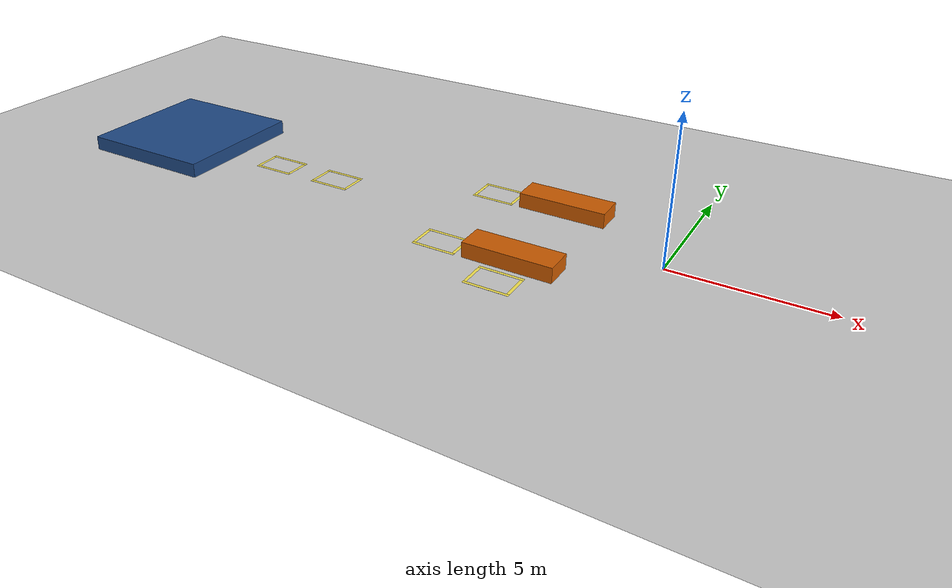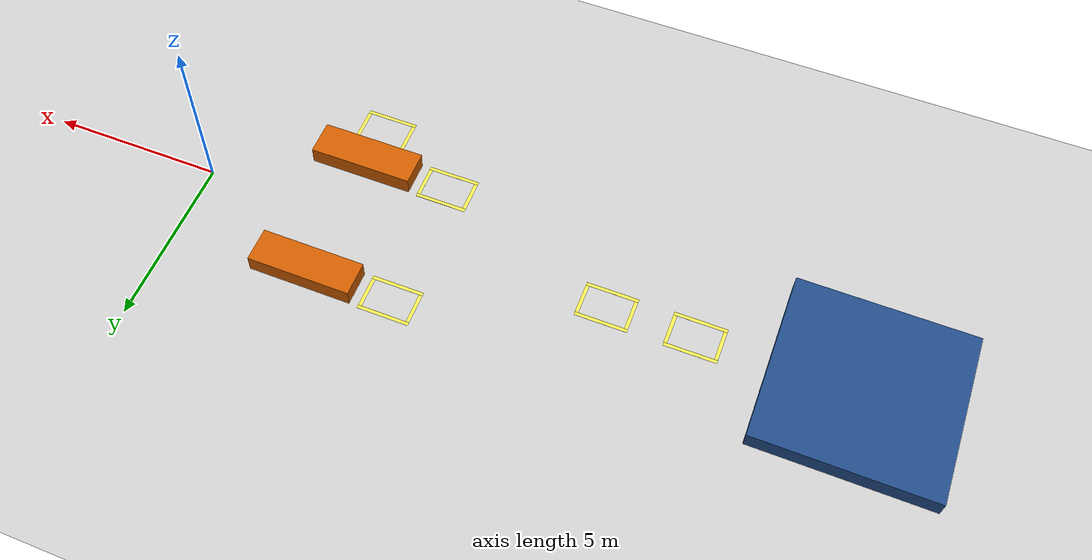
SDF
<sdf version="1.7">
 <world name="default">
  <model name="ground_plane">
   <static>1</static>
   <link name="link">
    <collision name="collision">
     <geometry><plane><normal>0 0 1</normal><size>100 100</size></plane></geometry>
     <surface>
      <contact><collide_bitmask>65535</collide_bitmask></contact>
      <friction><ode><mu>100</mu><mu2>50</mu2></ode></friction>
     </surface>
    </collision>
    <visual name="visual">
     <cast_shadows>0</cast_shadows>
     <geometry><plane><normal>0 0 1</normal><size>100 100</size></plane></geometry>
     <material>
      <script><uri>file://media/materials/scripts/gazebo.material</uri><name>Gazebo/Grey</name></script>
     </material>
    </visual>
   </link>
  </model>
  <model name="ws_3m_1">
   <link name="link_0">
    <inertial>
     <mass>1</mass>
     <inertia>
      <ixx>0.166667</ixx>
      <ixy>0</ixy>
      <ixz>0</ixz>
      <iyy>0.166667</iyy>
      <iyz>0</iyz>
      <izz>0.166667</izz>
     </inertia>
    </inertial>
    <visual name="visual">
     <geometry><box><size>3 1 1</size></box></geometry>
     <material>
      <lighting>1</lighting>
      <script><uri>file://media/materials/scripts/gazebo.material</uri><name>Gazebo/Grey</name></script>
      <shader type="pixel"><normal_map>__default__</normal_map></shader>
      <ambient>0.808 0.361 0 1</ambient>
      <diffuse>0.7 0.7 0.7 1</diffuse>
      <specular>0.01 0.01 0.01 1</specular>
      <emissive>0 0 0 1</emissive>
     </material>
    </visual>
    <collision name="collision">
     <geometry><box><size>3 1 1</size></box></geometry>
     <surface>
      <friction>
       <ode><mu>1</mu><mu2>1</mu2><fdir1>0 0 0</fdir1><slip1>0</slip1><slip2>0</slip2></ode>
       <torsional>
        <coefficient>1</coefficient>
        <patch_radius>0</patch_radius>
        <surface_radius>0</surface_radius>
        <use_patch_radius>1</use_patch_radius>
        <ode><slip>0</slip></ode>
       </torsional>
      </friction>
      <bounce><restitution_coefficient>0</restitution_coefficient><threshold>1e+06</threshold></bounce>
      <contact>
       <collide_without_contact>0</collide_without_contact>
       <collide_without_contact_bitmask>1</collide_without_contact_bitmask>
       <collide_bitmask>1</collide_bitmask>
       <ode>
        <soft_cfm>0</soft_cfm>
        <soft_erp>0.2</soft_erp>
        <kp>1e+13</kp>
        <kd>1</kd>
        <max_vel>0.01</max_vel>
        <min_depth>0</min_depth>
       </ode>
       <bullet>
        <split_impulse>1</split_impulse>
        <split_impulse_penetration_threshold>-0.01</split_impulse_penetration_threshold>
        <soft_cfm>0</soft_cfm>
        <soft_erp>0.2</soft_erp>
        <kp>1e+13</kp>
        <kd>1</kd>
       </bullet>
      </contact>
     </surface>
    </collision>
   </link>
   <static>1</static>
   <pose>-4 2 0 0 -0 0</pose>
  </model>
  <model name="ws_3m_2">
   <link name="link_0">
    <inertial>
     <mass>1</mass>
     <inertia>
      <ixx>0.166667</ixx>
      <ixy>0</ixy>
      <ixz>0</ixz>
      <iyy>0.166667</iyy>
      <iyz>0</iyz>
      <izz>0.166667</izz>
     </inertia>
    </inertial>
    <visual name="visual">
     <geometry><box><size>3 1 1</size></box></geometry>
     <material>
      <lighting>1</lighting>
      <script><uri>file://media/materials/scripts/gazebo.material</uri><name>Gazebo/Grey</name></script>
      <shader type="pixel"><normal_map>__default__</normal_map></shader>
      <ambient>0.808 0.361 0 1</ambient>
      <diffuse>0.7 0.7 0.7 1</diffuse>
      <specular>0.01 0.01 0.01 1</specular>
      <emissive>0 0 0 1</emissive>
     </material>
    </visual>
    <collision name="collision">
     <geometry><box><size>3 1 1</size></box></geometry>
     <surface>
      <friction>
       <ode><mu>1</mu><mu2>1</mu2><fdir1>0 0 0</fdir1><slip1>0</slip1><slip2>0</slip2></ode>
       <torsional>
        <coefficient>1</coefficient>
        <patch_radius>0</patch_radius>
        <surface_radius>0</surface_radius>
        <use_patch_radius>1</use_patch_radius>
        <ode><slip>0</slip></ode>
       </torsional>
      </friction>
      <bounce><restitution_coefficient>0</restitution_coefficient><threshold>1e+06</threshold></bounce>
      <contact>
       <collide_without_contact>0</collide_without_contact>
       <collide_without_contact_bitmask>1</collide_without_contact_bitmask>
       <collide_bitmask>1</collide_bitmask>
       <ode>
        <soft_cfm>0</soft_cfm>
        <soft_erp>0.2</soft_erp>
        <kp>1e+13</kp>
        <kd>1</kd>
        <max_vel>0.01</max_vel>
        <min_depth>0</min_depth>
       </ode>
       <bullet>
        <split_impulse>1</split_impulse>
        <split_impulse_penetration_threshold>-0.01</split_impulse_penetration_threshold>
        <soft_cfm>0</soft_cfm>
        <soft_erp>0.2</soft_erp>
        <kp>1e+13</kp>
        <kd>1</kd>
       </bullet>
      </contact>
     </surface>
    </collision>
   </link>
   <static>1</static>
   <pose>-4 -2 0 0 -0 0</pose>
  </model>
  <model name="blue_square_5m_0">
   <link name="link_0">
    <inertial>
     <mass>1</mass>
     <inertia>
      <ixx>0.166667</ixx>
      <ixy>0</ixy>
      <ixz>0</ixz>
      <iyy>0.166667</iyy>
      <iyz>0</iyz>
      <izz>0.166667</izz>
     </inertia>
    </inertial>
    <visual name="visual">
     <geometry><box><size>5 5 1</size></box></geometry>
     <material>
      <lighting>1</lighting>
      <script><uri>file://media/materials/scripts/gazebo.material</uri><name>Gazebo/Grey</name></script>
      <shader type="pixel"><normal_map>__default__</normal_map></shader>
      <ambient>0.125 0.29 0.529 1</ambient>
      <diffuse>0.7 0.7 0.7 1</diffuse>
      <specular>0.01 0.01 0.01 1</specular>
      <emissive>0 0 0 1</emissive>
     </material>
    </visual>
    <collision name="collision">
     <geometry><box><size>5 5 1</size></box></geometry>
     <surface>
      <friction>
       <ode><mu>1</mu><mu2>1</mu2><fdir1>0 0 0</fdir1><slip1>0</slip1><slip2>0</slip2></ode>
       <torsional>
        <coefficient>1</coefficient>
        <patch_radius>0</patch_radius>
        <surface_radius>0</surface_radius>
        <use_patch_radius>1</use_patch_radius>
        <ode><slip>0</slip></ode>
       </torsional>
      </friction>
      <bounce><restitution_coefficient>0</restitution_coefficient><threshold>1e+06</threshold></bounce>
      <contact>
       <collide_without_contact>0</collide_without_contact>
       <collide_without_contact_bitmask>1</collide_without_contact_bitmask>
       <collide_bitmask>1</collide_bitmask>
       <ode>
        <soft_cfm>0</soft_cfm>
        <soft_erp>0.2</soft_erp>
        <kp>1e+13</kp>
        <kd>1</kd>
        <max_vel>0.01</max_vel>
        <min_depth>0</min_depth>
       </ode>
       <bullet>
        <split_impulse>1</split_impulse>
        <split_impulse_penetration_threshold>-0.01</split_impulse_penetration_threshold>
        <soft_cfm>0</soft_cfm>
        <soft_erp>0.2</soft_erp>
        <kp>1e+13</kp>
        <kd>1</kd>
       </bullet>
      </contact>
     </surface>
    </collision>
   </link>
   <static>1</static>
   <pose>-19 0 0 0 -0 0</pose>
  </model>
  <model name="strip_9">
   <link name="link_0">
    <inertial>
     <mass>1</mass>
     <inertia>
      <ixx>0.166667</ixx>
      <ixy>0</ixy>
      <ixz>0</ixz>
      <iyy>0.166667</iyy>
      <iyz>0</iyz>
      <izz>0.166667</izz>
     </inertia>
    </inertial>
    <pose>0 0.5 0 0 -0 0</pose>
    <visual name="visual">
     <geometry><box><size>1.5 0.1 0.001</size></box></geometry>
     <material>
      <lighting>1</lighting>
      <script><uri>file://media/materials/scripts/gazebo.material</uri><name>Gazebo/Grey</name></script>
      <shader type="pixel"><normal_map>__default__</normal_map></shader>
      <ambient>0.988 0.914 0.31 1</ambient>
      <diffuse>0.7 0.7 0.7 1</diffuse>
      <specular>0.01 0.01 0.01 1</specular>
      <emissive>0 0 0 1</emissive>
     </material>
    </visual>
    <collision name="collision">
     <geometry><box><size>1.5 0.1 0.001</size></box></geometry>
     <surface>
      <friction>
       <ode><mu>1</mu><mu2>1</mu2><fdir1>0 0 0</fdir1><slip1>0</slip1><slip2>0</slip2></ode>
       <torsional>
        <coefficient>1</coefficient>
        <patch_radius>0</patch_radius>
        <surface_radius>0</surface_radius>
        <use_patch_radius>1</use_patch_radius>
        <ode><slip>0</slip></ode>
       </torsional>
      </friction>
      <bounce><restitution_coefficient>0</restitution_coefficient><threshold>1e+06</threshold></bounce>
      <contact>
       <collide_without_contact>0</collide_without_contact>
       <collide_without_contact_bitmask>1</collide_without_contact_bitmask>
       <collide_bitmask>1</collide_bitmask>
       <ode>
        <soft_cfm>0</soft_cfm>
        <soft_erp>0.2</soft_erp>
        <kp>1e+13</kp>
        <kd>1</kd>
        <max_vel>0.01</max_vel>
        <min_depth>0</min_depth>
       </ode>
       <bullet>
        <split_impulse>1</split_impulse>
        <split_impulse_penetration_threshold>-0.01</split_impulse_penetration_threshold>
        <soft_cfm>0</soft_cfm>
        <soft_erp>0.2</soft_erp>
        <kp>1e+13</kp>
        <kd>1</kd>
       </bullet>
      </contact>
     </surface>
    </collision>
   </link>
   <link name="link_0_clone">
    <inertial>
     <mass>1</mass>
     <inertia>
      <ixx>0.166667</ixx>
      <ixy>0</ixy>
      <ixz>0</ixz>
      <iyy>0.166667</iyy>
      <iyz>0</iyz>
      <izz>0.166667</izz>
     </inertia>
    </inertial>
    <pose>0 -0.5 0 0 -0 0</pose>
    <visual name="visual">
     <geometry><box><size>1.5 0.1 0.001</size></box></geometry>
     <material>
      <lighting>1</lighting>
      <script><uri>file://media/materials/scripts/gazebo.material</uri><name>Gazebo/Grey</name></script>
      <shader type="pixel"><normal_map>__default__</normal_map></shader>
      <ambient>0.988 0.914 0.31 1</ambient>
      <diffuse>0.7 0.7 0.7 1</diffuse>
      <specular>0.01 0.01 0.01 1</specular>
      <emissive>0 0 0 1</emissive>
     </material>
    </visual>
    <collision name="collision">
     <geometry><box><size>1.5 0.1 0.001</size></box></geometry>
     <surface>
      <friction>
       <ode><mu>1</mu><mu2>1</mu2><fdir1>0 0 0</fdir1><slip1>0</slip1><slip2>0</slip2></ode>
       <torsional>
        <coefficient>1</coefficient>
        <patch_radius>0</patch_radius>
        <surface_radius>0</surface_radius>
        <use_patch_radius>1</use_patch_radius>
        <ode><slip>0</slip></ode>
       </torsional>
      </friction>
      <bounce><restitution_coefficient>0</restitution_coefficient><threshold>1e+06</threshold></bounce>
      <contact>
       <collide_without_contact>0</collide_without_contact>
       <collide_without_contact_bitmask>1</collide_without_contact_bitmask>
       <collide_bitmask>1</collide_bitmask>
       <ode>
        <soft_cfm>0</soft_cfm>
        <soft_erp>0.2</soft_erp>
        <kp>1e+13</kp>
        <kd>1</kd>
        <max_vel>0.01</max_vel>
        <min_depth>0</min_depth>
       </ode>
       <bullet>
        <split_impulse>1</split_impulse>
        <split_impulse_penetration_threshold>-0.01</split_impulse_penetration_threshold>
        <soft_cfm>0</soft_cfm>
        <soft_erp>0.2</soft_erp>
        <kp>1e+13</kp>
        <kd>1</kd>
       </bullet>
      </contact>
     </surface>
    </collision>
   </link>
   <link name="link_1">
    <inertial>
     <mass>1</mass>
     <inertia>
      <ixx>0.166667</ixx>
      <ixy>0</ixy>
      <ixz>0</ixz>
      <iyy>0.166667</iyy>
      <iyz>0</iyz>
      <izz>0.166667</izz>
     </inertia>
    </inertial>
    <pose>0.7 0 0 0 -0 0</pose>
    <visual name="visual">
     <geometry><box><size>0.1 0.9 0.001</size></box></geometry>
     <material>
      <lighting>1</lighting>
      <script><uri>file://media/materials/scripts/gazebo.material</uri><name>Gazebo/Grey</name></script>
      <shader type="pixel"><normal_map>__default__</normal_map></shader>
      <ambient>0.988 0.914 0.31 1</ambient>
      <diffuse>0.7 0.7 0.7 1</diffuse>
      <specular>0.01 0.01 0.01 1</specular>
      <emissive>0 0 0 1</emissive>
     </material>
    </visual>
    <collision name="collision">
     <geometry><box><size>0.1 0.9 0.001</size></box></geometry>
     <surface>
      <friction>
       <ode><mu>1</mu><mu2>1</mu2><fdir1>0 0 0</fdir1><slip1>0</slip1><slip2>0</slip2></ode>
       <torsional>
        <coefficient>1</coefficient>
        <patch_radius>0</patch_radius>
        <surface_radius>0</surface_radius>
        <use_patch_radius>1</use_patch_radius>
        <ode><slip>0</slip></ode>
       </torsional>
      </friction>
      <bounce><restitution_coefficient>0</restitution_coefficient><threshold>1e+06</threshold></bounce>
      <contact>
       <collide_without_contact>0</collide_without_contact>
       <collide_without_contact_bitmask>1</collide_without_contact_bitmask>
       <collide_bitmask>1</collide_bitmask>
       <ode>
        <soft_cfm>0</soft_cfm>
        <soft_erp>0.2</soft_erp>
        <kp>1e+13</kp>
        <kd>1</kd>
        <max_vel>0.01</max_vel>
        <min_depth>0</min_depth>
       </ode>
       <bullet>
        <split_impulse>1</split_impulse>
        <split_impulse_penetration_threshold>-0.01</split_impulse_penetration_threshold>
        <soft_cfm>0</soft_cfm>
        <soft_erp>0.2</soft_erp>
        <kp>1e+13</kp>
        <kd>1</kd>
       </bullet>
      </contact>
     </surface>
    </collision>
   </link>
   <link name="link_1_clone">
    <inertial>
     <mass>1</mass>
     <inertia>
      <ixx>0.166667</ixx>
      <ixy>0</ixy>
      <ixz>0</ixz>
      <iyy>0.166667</iyy>
      <iyz>0</iyz>
      <izz>0.166667</izz>
     </inertia>
    </inertial>
    <pose>-0.7 0 0 0 -0 0</pose>
    <visual name="visual">
     <geometry><box><size>0.1 0.9 0.001</size></box></geometry>
     <material>
      <lighting>1</lighting>
      <script><uri>file://media/materials/scripts/gazebo.material</uri><name>Gazebo/Grey</name></script>
      <shader type="pixel"><normal_map>__default__</normal_map></shader>
      <ambient>0.988 0.914 0.31 1</ambient>
      <diffuse>0.7 0.7 0.7 1</diffuse>
      <specular>0.01 0.01 0.01 1</specular>
      <emissive>0 0 0 1</emissive>
     </material>
    </visual>
    <collision name="collision">
     <geometry><box><size>0.1 0.9 0.001</size></box></geometry>
     <surface>
      <friction>
       <ode><mu>1</mu><mu2>1</mu2><fdir1>0 0 0</fdir1><slip1>0</slip1><slip2>0</slip2></ode>
       <torsional>
        <coefficient>1</coefficient>
        <patch_radius>0</patch_radius>
        <surface_radius>0</surface_radius>
        <use_patch_radius>1</use_patch_radius>
        <ode><slip>0</slip></ode>
       </torsional>
      </friction>
      <bounce><restitution_coefficient>0</restitution_coefficient><threshold>1e+06</threshold></bounce>
      <contact>
       <collide_without_contact>0</collide_without_contact>
       <collide_without_contact_bitmask>1</collide_without_contact_bitmask>
       <collide_bitmask>1</collide_bitmask>
       <ode>
        <soft_cfm>0</soft_cfm>
        <soft_erp>0.2</soft_erp>
        <kp>1e+13</kp>
        <kd>1</kd>
        <max_vel>0.01</max_vel>
        <min_depth>0</min_depth>
       </ode>
       <bullet>
        <split_impulse>1</split_impulse>
        <split_impulse_penetration_threshold>-0.01</split_impulse_penetration_threshold>
        <soft_cfm>0</soft_cfm>
        <soft_erp>0.2</soft_erp>
        <kp>1e+13</kp>
        <kd>1</kd>
       </bullet>
      </contact>
     </surface>
    </collision>
   </link>
   <static>1</static>
   <pose>-4 -3.25 0 0 -0 0</pose>
  </model>
  <model name="strip_11">
   <link name="link_0">
    <inertial>
     <mass>1</mass>
     <inertia>
      <ixx>0.166667</ixx>
      <ixy>0</ixy>
      <ixz>0</ixz>
      <iyy>0.166667</iyy>
      <iyz>0</iyz>
      <izz>0.166667</izz>
     </inertia>
    </inertial>
    <pose>0 0.5 0 0 -0 0</pose>
    <visual name="visual">
     <geometry><box><size>1.5 0.1 0.001</size></box></geometry>
     <material>
      <lighting>1</lighting>
      <script><uri>file://media/materials/scripts/gazebo.material</uri><name>Gazebo/Grey</name></script>
      <shader type="pixel"><normal_map>__default__</normal_map></shader>
      <ambient>0.988 0.914 0.31 1</ambient>
      <diffuse>0.7 0.7 0.7 1</diffuse>
      <specular>0.01 0.01 0.01 1</specular>
      <emissive>0 0 0 1</emissive>
     </material>
    </visual>
    <collision name="collision">
     <geometry><box><size>1.5 0.1 0.001</size></box></geometry>
     <surface>
      <friction>
       <ode><mu>1</mu><mu2>1</mu2><fdir1>0 0 0</fdir1><slip1>0</slip1><slip2>0</slip2></ode>
       <torsional>
        <coefficient>1</coefficient>
        <patch_radius>0</patch_radius>
        <surface_radius>0</surface_radius>
        <use_patch_radius>1</use_patch_radius>
        <ode><slip>0</slip></ode>
       </torsional>
      </friction>
      <bounce><restitution_coefficient>0</restitution_coefficient><threshold>1e+06</threshold></bounce>
      <contact>
       <collide_without_contact>0</collide_without_contact>
       <collide_without_contact_bitmask>1</collide_without_contact_bitmask>
       <collide_bitmask>1</collide_bitmask>
       <ode>
        <soft_cfm>0</soft_cfm>
        <soft_erp>0.2</soft_erp>
        <kp>1e+13</kp>
        <kd>1</kd>
        <max_vel>0.01</max_vel>
        <min_depth>0</min_depth>
       </ode>
       <bullet>
        <split_impulse>1</split_impulse>
        <split_impulse_penetration_threshold>-0.01</split_impulse_penetration_threshold>
        <soft_cfm>0</soft_cfm>
        <soft_erp>0.2</soft_erp>
        <kp>1e+13</kp>
        <kd>1</kd>
       </bullet>
      </contact>
     </surface>
    </collision>
   </link>
   <link name="link_0_clone">
    <inertial>
     <mass>1</mass>
     <inertia>
      <ixx>0.166667</ixx>
      <ixy>0</ixy>
      <ixz>0</ixz>
      <iyy>0.166667</iyy>
      <iyz>0</iyz>
      <izz>0.166667</izz>
     </inertia>
    </inertial>
    <pose>0 -0.5 0 0 -0 0</pose>
    <visual name="visual">
     <geometry><box><size>1.5 0.1 0.001</size></box></geometry>
     <material>
      <lighting>1</lighting>
      <script><uri>file://media/materials/scripts/gazebo.material</uri><name>Gazebo/Grey</name></script>
      <shader type="pixel"><normal_map>__default__</normal_map></shader>
      <ambient>0.988 0.914 0.31 1</ambient>
      <diffuse>0.7 0.7 0.7 1</diffuse>
      <specular>0.01 0.01 0.01 1</specular>
      <emissive>0 0 0 1</emissive>
     </material>
    </visual>
    <collision name="collision">
     <geometry><box><size>1.5 0.1 0.001</size></box></geometry>
     <surface>
      <friction>
       <ode><mu>1</mu><mu2>1</mu2><fdir1>0 0 0</fdir1><slip1>0</slip1><slip2>0</slip2></ode>
       <torsional>
        <coefficient>1</coefficient>
        <patch_radius>0</patch_radius>
        <surface_radius>0</surface_radius>
        <use_patch_radius>1</use_patch_radius>
        <ode><slip>0</slip></ode>
       </torsional>
      </friction>
      <bounce><restitution_coefficient>0</restitution_coefficient><threshold>1e+06</threshold></bounce>
      <contact>
       <collide_without_contact>0</collide_without_contact>
       <collide_without_contact_bitmask>1</collide_without_contact_bitmask>
       <collide_bitmask>1</collide_bitmask>
       <ode>
        <soft_cfm>0</soft_cfm>
        <soft_erp>0.2</soft_erp>
        <kp>1e+13</kp>
        <kd>1</kd>
        <max_vel>0.01</max_vel>
        <min_depth>0</min_depth>
       </ode>
       <bullet>
        <split_impulse>1</split_impulse>
        <split_impulse_penetration_threshold>-0.01</split_impulse_penetration_threshold>
        <soft_cfm>0</soft_cfm>
        <soft_erp>0.2</soft_erp>
        <kp>1e+13</kp>
        <kd>1</kd>
       </bullet>
      </contact>
     </surface>
    </collision>
   </link>
   <link name="link_1">
    <inertial>
     <mass>1</mass>
     <inertia>
      <ixx>0.166667</ixx>
      <ixy>0</ixy>
      <ixz>0</ixz>
      <iyy>0.166667</iyy>
      <iyz>0</iyz>
      <izz>0.166667</izz>
     </inertia>
    </inertial>
    <pose>0.7 0 0 0 -0 0</pose>
    <visual name="visual">
     <geometry><box><size>0.1 0.9 0.001</size></box></geometry>
     <material>
      <lighting>1</lighting>
      <script><uri>file://media/materials/scripts/gazebo.material</uri><name>Gazebo/Grey</name></script>
      <shader type="pixel"><normal_map>__default__</normal_map></shader>
      <ambient>0.988 0.914 0.31 1</ambient>
      <diffuse>0.7 0.7 0.7 1</diffuse>
      <specular>0.01 0.01 0.01 1</specular>
      <emissive>0 0 0 1</emissive>
     </material>
    </visual>
    <collision name="collision">
     <geometry><box><size>0.1 0.9 0.001</size></box></geometry>
     <surface>
      <friction>
       <ode><mu>1</mu><mu2>1</mu2><fdir1>0 0 0</fdir1><slip1>0</slip1><slip2>0</slip2></ode>
       <torsional>
        <coefficient>1</coefficient>
        <patch_radius>0</patch_radius>
        <surface_radius>0</surface_radius>
        <use_patch_radius>1</use_patch_radius>
        <ode><slip>0</slip></ode>
       </torsional>
      </friction>
      <bounce><restitution_coefficient>0</restitution_coefficient><threshold>1e+06</threshold></bounce>
      <contact>
       <collide_without_contact>0</collide_without_contact>
       <collide_without_contact_bitmask>1</collide_without_contact_bitmask>
       <collide_bitmask>1</collide_bitmask>
       <ode>
        <soft_cfm>0</soft_cfm>
        <soft_erp>0.2</soft_erp>
        <kp>1e+13</kp>
        <kd>1</kd>
        <max_vel>0.01</max_vel>
        <min_depth>0</min_depth>
       </ode>
       <bullet>
        <split_impulse>1</split_impulse>
        <split_impulse_penetration_threshold>-0.01</split_impulse_penetration_threshold>
        <soft_cfm>0</soft_cfm>
        <soft_erp>0.2</soft_erp>
        <kp>1e+13</kp>
        <kd>1</kd>
       </bullet>
      </contact>
     </surface>
    </collision>
   </link>
   <link name="link_1_clone">
    <inertial>
     <mass>1</mass>
     <inertia>
      <ixx>0.166667</ixx>
      <ixy>0</ixy>
      <ixz>0</ixz>
      <iyy>0.166667</iyy>
      <iyz>0</iyz>
      <izz>0.166667</izz>
     </inertia>
    </inertial>
    <pose>-0.7 0 0 0 -0 0</pose>
    <visual name="visual">
     <geometry><box><size>0.1 0.9 0.001</size></box></geometry>
     <material>
      <lighting>1</lighting>
      <script><uri>file://media/materials/scripts/gazebo.material</uri><name>Gazebo/Grey</name></script>
      <shader type="pixel"><normal_map>__default__</normal_map></shader>
      <ambient>0.988 0.914 0.31 1</ambient>
      <diffuse>0.7 0.7 0.7 1</diffuse>
      <specular>0.01 0.01 0.01 1</specular>
      <emissive>0 0 0 1</emissive>
     </material>
    </visual>
    <collision name="collision">
     <geometry><box><size>0.1 0.9 0.001</size></box></geometry>
     <surface>
      <friction>
       <ode><mu>1</mu><mu2>1</mu2><fdir1>0 0 0</fdir1><slip1>0</slip1><slip2>0</slip2></ode>
       <torsional>
        <coefficient>1</coefficient>
        <patch_radius>0</patch_radius>
        <surface_radius>0</surface_radius>
        <use_patch_radius>1</use_patch_radius>
        <ode><slip>0</slip></ode>
       </torsional>
      </friction>
      <bounce><restitution_coefficient>0</restitution_coefficient><threshold>1e+06</threshold></bounce>
      <contact>
       <collide_without_contact>0</collide_without_contact>
       <collide_without_contact_bitmask>1</collide_without_contact_bitmask>
       <collide_bitmask>1</collide_bitmask>
       <ode>
        <soft_cfm>0</soft_cfm>
        <soft_erp>0.2</soft_erp>
        <kp>1e+13</kp>
        <kd>1</kd>
        <max_vel>0.01</max_vel>
        <min_depth>0</min_depth>
       </ode>
       <bullet>
        <split_impulse>1</split_impulse>
        <split_impulse_penetration_threshold>-0.01</split_impulse_penetration_threshold>
        <soft_cfm>0</soft_cfm>
        <soft_erp>0.2</soft_erp>
        <kp>1e+13</kp>
        <kd>1</kd>
       </bullet>
      </contact>
     </surface>
    </collision>
   </link>
   <static>1</static>
   <pose>-6.5 2 0 0 -0 0</pose>
  </model>
  <model name="strip_12">
   <link name="link_0">
    <inertial>
     <mass>1</mass>
     <inertia>
      <ixx>0.166667</ixx>
      <ixy>0</ixy>
      <ixz>0</ixz>
      <iyy>0.166667</iyy>
      <iyz>0</iyz>
      <izz>0.166667</izz>
     </inertia>
    </inertial>
    <pose>0 0.5 0 0 -0 0</pose>
    <visual name="visual">
     <geometry><box><size>1.5 0.1 0.001</size></box></geometry>
     <material>
      <lighting>1</lighting>
      <script><uri>file://media/materials/scripts/gazebo.material</uri><name>Gazebo/Grey</name></script>
      <shader type="pixel"><normal_map>__default__</normal_map></shader>
      <ambient>0.988 0.914 0.31 1</ambient>
      <diffuse>0.7 0.7 0.7 1</diffuse>
      <specular>0.01 0.01 0.01 1</specular>
      <emissive>0 0 0 1</emissive>
     </material>
    </visual>
    <collision name="collision">
     <geometry><box><size>1.5 0.1 0.001</size></box></geometry>
     <surface>
      <friction>
       <ode><mu>1</mu><mu2>1</mu2><fdir1>0 0 0</fdir1><slip1>0</slip1><slip2>0</slip2></ode>
       <torsional>
        <coefficient>1</coefficient>
        <patch_radius>0</patch_radius>
        <surface_radius>0</surface_radius>
        <use_patch_radius>1</use_patch_radius>
        <ode><slip>0</slip></ode>
       </torsional>
      </friction>
      <bounce><restitution_coefficient>0</restitution_coefficient><threshold>1e+06</threshold></bounce>
      <contact>
       <collide_without_contact>0</collide_without_contact>
       <collide_without_contact_bitmask>1</collide_without_contact_bitmask>
       <collide_bitmask>1</collide_bitmask>
       <ode>
        <soft_cfm>0</soft_cfm>
        <soft_erp>0.2</soft_erp>
        <kp>1e+13</kp>
        <kd>1</kd>
        <max_vel>0.01</max_vel>
        <min_depth>0</min_depth>
       </ode>
       <bullet>
        <split_impulse>1</split_impulse>
        <split_impulse_penetration_threshold>-0.01</split_impulse_penetration_threshold>
        <soft_cfm>0</soft_cfm>
        <soft_erp>0.2</soft_erp>
        <kp>1e+13</kp>
        <kd>1</kd>
       </bullet>
      </contact>
     </surface>
    </collision>
   </link>
   <link name="link_0_clone">
    <inertial>
     <mass>1</mass>
     <inertia>
      <ixx>0.166667</ixx>
      <ixy>0</ixy>
      <ixz>0</ixz>
      <iyy>0.166667</iyy>
      <iyz>0</iyz>
      <izz>0.166667</izz>
     </inertia>
    </inertial>
    <pose>0 -0.5 0 0 -0 0</pose>
    <visual name="visual">
     <geometry><box><size>1.5 0.1 0.001</size></box></geometry>
     <material>
      <lighting>1</lighting>
      <script><uri>file://media/materials/scripts/gazebo.material</uri><name>Gazebo/Grey</name></script>
      <shader type="pixel"><normal_map>__default__</normal_map></shader>
      <ambient>0.988 0.914 0.31 1</ambient>
      <diffuse>0.7 0.7 0.7 1</diffuse>
      <specular>0.01 0.01 0.01 1</specular>
      <emissive>0 0 0 1</emissive>
     </material>
    </visual>
    <collision name="collision">
     <geometry><box><size>1.5 0.1 0.001</size></box></geometry>
     <surface>
      <friction>
       <ode><mu>1</mu><mu2>1</mu2><fdir1>0 0 0</fdir1><slip1>0</slip1><slip2>0</slip2></ode>
       <torsional>
        <coefficient>1</coefficient>
        <patch_radius>0</patch_radius>
        <surface_radius>0</surface_radius>
        <use_patch_radius>1</use_patch_radius>
        <ode><slip>0</slip></ode>
       </torsional>
      </friction>
      <bounce><restitution_coefficient>0</restitution_coefficient><threshold>1e+06</threshold></bounce>
      <contact>
       <collide_without_contact>0</collide_without_contact>
       <collide_without_contact_bitmask>1</collide_without_contact_bitmask>
       <collide_bitmask>1</collide_bitmask>
       <ode>
        <soft_cfm>0</soft_cfm>
        <soft_erp>0.2</soft_erp>
        <kp>1e+13</kp>
        <kd>1</kd>
        <max_vel>0.01</max_vel>
        <min_depth>0</min_depth>
       </ode>
       <bullet>
        <split_impulse>1</split_impulse>
        <split_impulse_penetration_threshold>-0.01</split_impulse_penetration_threshold>
        <soft_cfm>0</soft_cfm>
        <soft_erp>0.2</soft_erp>
        <kp>1e+13</kp>
        <kd>1</kd>
       </bullet>
      </contact>
     </surface>
    </collision>
   </link>
   <link name="link_1">
    <inertial>
     <mass>1</mass>
     <inertia>
      <ixx>0.166667</ixx>
      <ixy>0</ixy>
      <ixz>0</ixz>
      <iyy>0.166667</iyy>
      <iyz>0</iyz>
      <izz>0.166667</izz>
     </inertia>
    </inertial>
    <pose>0.7 0 0 0 -0 0</pose>
    <visual name="visual">
     <geometry><box><size>0.1 0.9 0.001</size></box></geometry>
     <material>
      <lighting>1</lighting>
      <script><uri>file://media/materials/scripts/gazebo.material</uri><name>Gazebo/Grey</name></script>
      <shader type="pixel"><normal_map>__default__</normal_map></shader>
      <ambient>0.988 0.914 0.31 1</ambient>
      <diffuse>0.7 0.7 0.7 1</diffuse>
      <specular>0.01 0.01 0.01 1</specular>
      <emissive>0 0 0 1</emissive>
     </material>
    </visual>
    <collision name="collision">
     <geometry><box><size>0.1 0.9 0.001</size></box></geometry>
     <surface>
      <friction>
       <ode><mu>1</mu><mu2>1</mu2><fdir1>0 0 0</fdir1><slip1>0</slip1><slip2>0</slip2></ode>
       <torsional>
        <coefficient>1</coefficient>
        <patch_radius>0</patch_radius>
        <surface_radius>0</surface_radius>
        <use_patch_radius>1</use_patch_radius>
        <ode><slip>0</slip></ode>
       </torsional>
      </friction>
      <bounce><restitution_coefficient>0</restitution_coefficient><threshold>1e+06</threshold></bounce>
      <contact>
       <collide_without_contact>0</collide_without_contact>
       <collide_without_contact_bitmask>1</collide_without_contact_bitmask>
       <collide_bitmask>1</collide_bitmask>
       <ode>
        <soft_cfm>0</soft_cfm>
        <soft_erp>0.2</soft_erp>
        <kp>1e+13</kp>
        <kd>1</kd>
        <max_vel>0.01</max_vel>
        <min_depth>0</min_depth>
       </ode>
       <bullet>
        <split_impulse>1</split_impulse>
        <split_impulse_penetration_threshold>-0.01</split_impulse_penetration_threshold>
        <soft_cfm>0</soft_cfm>
        <soft_erp>0.2</soft_erp>
        <kp>1e+13</kp>
        <kd>1</kd>
       </bullet>
      </contact>
     </surface>
    </collision>
   </link>
   <link name="link_1_clone">
    <inertial>
     <mass>1</mass>
     <inertia>
      <ixx>0.166667</ixx>
      <ixy>0</ixy>
      <ixz>0</ixz>
      <iyy>0.166667</iyy>
      <iyz>0</iyz>
      <izz>0.166667</izz>
     </inertia>
    </inertial>
    <pose>-0.7 0 0 0 -0 0</pose>
    <visual name="visual">
     <geometry><box><size>0.1 0.9 0.001</size></box></geometry>
     <material>
      <lighting>1</lighting>
      <script><uri>file://media/materials/scripts/gazebo.material</uri><name>Gazebo/Grey</name></script>
      <shader type="pixel"><normal_map>__default__</normal_map></shader>
      <ambient>0.988 0.914 0.31 1</ambient>
      <diffuse>0.7 0.7 0.7 1</diffuse>
      <specular>0.01 0.01 0.01 1</specular>
      <emissive>0 0 0 1</emissive>
     </material>
    </visual>
    <collision name="collision">
     <geometry><box><size>0.1 0.9 0.001</size></box></geometry>
     <surface>
      <friction>
       <ode><mu>1</mu><mu2>1</mu2><fdir1>0 0 0</fdir1><slip1>0</slip1><slip2>0</slip2></ode>
       <torsional>
        <coefficient>1</coefficient>
        <patch_radius>0</patch_radius>
        <surface_radius>0</surface_radius>
        <use_patch_radius>1</use_patch_radius>
        <ode><slip>0</slip></ode>
       </torsional>
      </friction>
      <bounce><restitution_coefficient>0</restitution_coefficient><threshold>1e+06</threshold></bounce>
      <contact>
       <collide_without_contact>0</collide_without_contact>
       <collide_without_contact_bitmask>1</collide_without_contact_bitmask>
       <collide_bitmask>1</collide_bitmask>
       <ode>
        <soft_cfm>0</soft_cfm>
        <soft_erp>0.2</soft_erp>
        <kp>1e+13</kp>
        <kd>1</kd>
        <max_vel>0.01</max_vel>
        <min_depth>0</min_depth>
       </ode>
       <bullet>
        <split_impulse>1</split_impulse>
        <split_impulse_penetration_threshold>-0.01</split_impulse_penetration_threshold>
        <soft_cfm>0</soft_cfm>
        <soft_erp>0.2</soft_erp>
        <kp>1e+13</kp>
        <kd>1</kd>
       </bullet>
      </contact>
     </surface>
    </collision>
   </link>
   <static>1</static>
   <pose>-6.5 -2 0 0 -0 0</pose>
  </model>
  <model name="strip_13">
   <link name="link_0">
    <inertial>
     <mass>1</mass>
     <inertia>
      <ixx>0.166667</ixx>
      <ixy>0</ixy>
      <ixz>0</ixz>
      <iyy>0.166667</iyy>
      <iyz>0</iyz>
      <izz>0.166667</izz>
     </inertia>
    </inertial>
    <pose>0 0.5 0 0 -0 0</pose>
    <visual name="visual">
     <geometry><box><size>1.5 0.1 0.001</size></box></geometry>
     <material>
      <lighting>1</lighting>
      <script><uri>file://media/materials/scripts/gazebo.material</uri><name>Gazebo/Grey</name></script>
      <shader type="pixel"><normal_map>__default__</normal_map></shader>
      <ambient>0.988 0.914 0.31 1</ambient>
      <diffuse>0.7 0.7 0.7 1</diffuse>
      <specular>0.01 0.01 0.01 1</specular>
      <emissive>0 0 0 1</emissive>
     </material>
    </visual>
    <collision name="collision">
     <geometry><box><size>1.5 0.1 0.001</size></box></geometry>
     <surface>
      <friction>
       <ode><mu>1</mu><mu2>1</mu2><fdir1>0 0 0</fdir1><slip1>0</slip1><slip2>0</slip2></ode>
       <torsional>
        <coefficient>1</coefficient>
        <patch_radius>0</patch_radius>
        <surface_radius>0</surface_radius>
        <use_patch_radius>1</use_patch_radius>
        <ode><slip>0</slip></ode>
       </torsional>
      </friction>
      <bounce><restitution_coefficient>0</restitution_coefficient><threshold>1e+06</threshold></bounce>
      <contact>
       <collide_without_contact>0</collide_without_contact>
       <collide_without_contact_bitmask>1</collide_without_contact_bitmask>
       <collide_bitmask>1</collide_bitmask>
       <ode>
        <soft_cfm>0</soft_cfm>
        <soft_erp>0.2</soft_erp>
        <kp>1e+13</kp>
        <kd>1</kd>
        <max_vel>0.01</max_vel>
        <min_depth>0</min_depth>
       </ode>
       <bullet>
        <split_impulse>1</split_impulse>
        <split_impulse_penetration_threshold>-0.01</split_impulse_penetration_threshold>
        <soft_cfm>0</soft_cfm>
        <soft_erp>0.2</soft_erp>
        <kp>1e+13</kp>
        <kd>1</kd>
       </bullet>
      </contact>
     </surface>
    </collision>
   </link>
   <link name="link_0_clone">
    <inertial>
     <mass>1</mass>
     <inertia>
      <ixx>0.166667</ixx>
      <ixy>0</ixy>
      <ixz>0</ixz>
      <iyy>0.166667</iyy>
      <iyz>0</iyz>
      <izz>0.166667</izz>
     </inertia>
    </inertial>
    <pose>0 -0.5 0 0 -0 0</pose>
    <visual name="visual">
     <geometry><box><size>1.5 0.1 0.001</size></box></geometry>
     <material>
      <lighting>1</lighting>
      <script><uri>file://media/materials/scripts/gazebo.material</uri><name>Gazebo/Grey</name></script>
      <shader type="pixel"><normal_map>__default__</normal_map></shader>
      <ambient>0.988 0.914 0.31 1</ambient>
      <diffuse>0.7 0.7 0.7 1</diffuse>
      <specular>0.01 0.01 0.01 1</specular>
      <emissive>0 0 0 1</emissive>
     </material>
    </visual>
    <collision name="collision">
     <geometry><box><size>1.5 0.1 0.001</size></box></geometry>
     <surface>
      <friction>
       <ode><mu>1</mu><mu2>1</mu2><fdir1>0 0 0</fdir1><slip1>0</slip1><slip2>0</slip2></ode>
       <torsional>
        <coefficient>1</coefficient>
        <patch_radius>0</patch_radius>
        <surface_radius>0</surface_radius>
        <use_patch_radius>1</use_patch_radius>
        <ode><slip>0</slip></ode>
       </torsional>
      </friction>
      <bounce><restitution_coefficient>0</restitution_coefficient><threshold>1e+06</threshold></bounce>
      <contact>
       <collide_without_contact>0</collide_without_contact>
       <collide_without_contact_bitmask>1</collide_without_contact_bitmask>
       <collide_bitmask>1</collide_bitmask>
       <ode>
        <soft_cfm>0</soft_cfm>
        <soft_erp>0.2</soft_erp>
        <kp>1e+13</kp>
        <kd>1</kd>
        <max_vel>0.01</max_vel>
        <min_depth>0</min_depth>
       </ode>
       <bullet>
        <split_impulse>1</split_impulse>
        <split_impulse_penetration_threshold>-0.01</split_impulse_penetration_threshold>
        <soft_cfm>0</soft_cfm>
        <soft_erp>0.2</soft_erp>
        <kp>1e+13</kp>
        <kd>1</kd>
       </bullet>
      </contact>
     </surface>
    </collision>
   </link>
   <link name="link_1">
    <inertial>
     <mass>1</mass>
     <inertia>
      <ixx>0.166667</ixx>
      <ixy>0</ixy>
      <ixz>0</ixz>
      <iyy>0.166667</iyy>
      <iyz>0</iyz>
      <izz>0.166667</izz>
     </inertia>
    </inertial>
    <pose>0.7 0 0 0 -0 0</pose>
    <visual name="visual">
     <geometry><box><size>0.1 0.9 0.001</size></box></geometry>
     <material>
      <lighting>1</lighting>
      <script><uri>file://media/materials/scripts/gazebo.material</uri><name>Gazebo/Grey</name></script>
      <shader type="pixel"><normal_map>__default__</normal_map></shader>
      <ambient>0.988 0.914 0.31 1</ambient>
      <diffuse>0.7 0.7 0.7 1</diffuse>
      <specular>0.01 0.01 0.01 1</specular>
      <emissive>0 0 0 1</emissive>
     </material>
    </visual>
    <collision name="collision">
     <geometry><box><size>0.1 0.9 0.001</size></box></geometry>
     <surface>
      <friction>
       <ode><mu>1</mu><mu2>1</mu2><fdir1>0 0 0</fdir1><slip1>0</slip1><slip2>0</slip2></ode>
       <torsional>
        <coefficient>1</coefficient>
        <patch_radius>0</patch_radius>
        <surface_radius>0</surface_radius>
        <use_patch_radius>1</use_patch_radius>
        <ode><slip>0</slip></ode>
       </torsional>
      </friction>
      <bounce><restitution_coefficient>0</restitution_coefficient><threshold>1e+06</threshold></bounce>
      <contact>
       <collide_without_contact>0</collide_without_contact>
       <collide_without_contact_bitmask>1</collide_without_contact_bitmask>
       <collide_bitmask>1</collide_bitmask>
       <ode>
        <soft_cfm>0</soft_cfm>
        <soft_erp>0.2</soft_erp>
        <kp>1e+13</kp>
        <kd>1</kd>
        <max_vel>0.01</max_vel>
        <min_depth>0</min_depth>
       </ode>
       <bullet>
        <split_impulse>1</split_impulse>
        <split_impulse_penetration_threshold>-0.01</split_impulse_penetration_threshold>
        <soft_cfm>0</soft_cfm>
        <soft_erp>0.2</soft_erp>
        <kp>1e+13</kp>
        <kd>1</kd>
       </bullet>
      </contact>
     </surface>
    </collision>
   </link>
   <link name="link_1_clone">
    <inertial>
     <mass>1</mass>
     <inertia>
      <ixx>0.166667</ixx>
      <ixy>0</ixy>
      <ixz>0</ixz>
      <iyy>0.166667</iyy>
      <iyz>0</iyz>
      <izz>0.166667</izz>
     </inertia>
    </inertial>
    <pose>-0.7 0 0 0 -0 0</pose>
    <visual name="visual">
     <geometry><box><size>0.1 0.9 0.001</size></box></geometry>
     <material>
      <lighting>1</lighting>
      <script><uri>file://media/materials/scripts/gazebo.material</uri><name>Gazebo/Grey</name></script>
      <shader type="pixel"><normal_map>__default__</normal_map></shader>
      <ambient>0.988 0.914 0.31 1</ambient>
      <diffuse>0.7 0.7 0.7 1</diffuse>
      <specular>0.01 0.01 0.01 1</specular>
      <emissive>0 0 0 1</emissive>
     </material>
    </visual>
    <collision name="collision">
     <geometry><box><size>0.1 0.9 0.001</size></box></geometry>
     <surface>
      <friction>
       <ode><mu>1</mu><mu2>1</mu2><fdir1>0 0 0</fdir1><slip1>0</slip1><slip2>0</slip2></ode>
       <torsional>
        <coefficient>1</coefficient>
        <patch_radius>0</patch_radius>
        <surface_radius>0</surface_radius>
        <use_patch_radius>1</use_patch_radius>
        <ode><slip>0</slip></ode>
       </torsional>
      </friction>
      <bounce><restitution_coefficient>0</restitution_coefficient><threshold>1e+06</threshold></bounce>
      <contact>
       <collide_without_contact>0</collide_without_contact>
       <collide_without_contact_bitmask>1</collide_without_contact_bitmask>
       <collide_bitmask>1</collide_bitmask>
       <ode>
        <soft_cfm>0</soft_cfm>
        <soft_erp>0.2</soft_erp>
        <kp>1e+13</kp>
        <kd>1</kd>
        <max_vel>0.01</max_vel>
        <min_depth>0</min_depth>
       </ode>
       <bullet>
        <split_impulse>1</split_impulse>
        <split_impulse_penetration_threshold>-0.01</split_impulse_penetration_threshold>
        <soft_cfm>0</soft_cfm>
        <soft_erp>0.2</soft_erp>
        <kp>1e+13</kp>
        <kd>1</kd>
       </bullet>
      </contact>
     </surface>
    </collision>
   </link>
   <static>1</static>
   <pose>-14.5 0 0 0 -0 0</pose>
  </model>
  <model name="strip_14">
   <link name="link_0">
    <inertial>
     <mass>1</mass>
     <inertia>
      <ixx>0.166667</ixx>
      <ixy>0</ixy>
      <ixz>0</ixz>
      <iyy>0.166667</iyy>
      <iyz>0</iyz>
      <izz>0.166667</izz>
     </inertia>
    </inertial>
    <pose>0 0.5 0 0 -0 0</pose>
    <visual name="visual">
     <geometry><box><size>1.5 0.1 0.001</size></box></geometry>
     <material>
      <lighting>1</lighting>
      <script><uri>file://media/materials/scripts/gazebo.material</uri><name>Gazebo/Grey</name></script>
      <shader type="pixel"><normal_map>__default__</normal_map></shader>
      <ambient>0.988 0.914 0.31 1</ambient>
      <diffuse>0.7 0.7 0.7 1</diffuse>
      <specular>0.01 0.01 0.01 1</specular>
      <emissive>0 0 0 1</emissive>
     </material>
    </visual>
    <collision name="collision">
     <geometry><box><size>1.5 0.1 0.001</size></box></geometry>
     <surface>
      <friction>
       <ode><mu>1</mu><mu2>1</mu2><fdir1>0 0 0</fdir1><slip1>0</slip1><slip2>0</slip2></ode>
       <torsional>
        <coefficient>1</coefficient>
        <patch_radius>0</patch_radius>
        <surface_radius>0</surface_radius>
        <use_patch_radius>1</use_patch_radius>
        <ode><slip>0</slip></ode>
       </torsional>
      </friction>
      <bounce><restitution_coefficient>0</restitution_coefficient><threshold>1e+06</threshold></bounce>
      <contact>
       <collide_without_contact>0</collide_without_contact>
       <collide_without_contact_bitmask>1</collide_without_contact_bitmask>
       <collide_bitmask>1</collide_bitmask>
       <ode>
        <soft_cfm>0</soft_cfm>
        <soft_erp>0.2</soft_erp>
        <kp>1e+13</kp>
        <kd>1</kd>
        <max_vel>0.01</max_vel>
        <min_depth>0</min_depth>
       </ode>
       <bullet>
        <split_impulse>1</split_impulse>
        <split_impulse_penetration_threshold>-0.01</split_impulse_penetration_threshold>
        <soft_cfm>0</soft_cfm>
        <soft_erp>0.2</soft_erp>
        <kp>1e+13</kp>
        <kd>1</kd>
       </bullet>
      </contact>
     </surface>
    </collision>
   </link>
   <link name="link_0_clone">
    <inertial>
     <mass>1</mass>
     <inertia>
      <ixx>0.166667</ixx>
      <ixy>0</ixy>
      <ixz>0</ixz>
      <iyy>0.166667</iyy>
      <iyz>0</iyz>
      <izz>0.166667</izz>
     </inertia>
    </inertial>
    <pose>0 -0.5 0 0 -0 0</pose>
    <visual name="visual">
     <geometry><box><size>1.5 0.1 0.001</size></box></geometry>
     <material>
      <lighting>1</lighting>
      <script><uri>file://media/materials/scripts/gazebo.material</uri><name>Gazebo/Grey</name></script>
      <shader type="pixel"><normal_map>__default__</normal_map></shader>
      <ambient>0.988 0.914 0.31 1</ambient>
      <diffuse>0.7 0.7 0.7 1</diffuse>
      <specular>0.01 0.01 0.01 1</specular>
      <emissive>0 0 0 1</emissive>
     </material>
    </visual>
    <collision name="collision">
     <geometry><box><size>1.5 0.1 0.001</size></box></geometry>
     <surface>
      <friction>
       <ode><mu>1</mu><mu2>1</mu2><fdir1>0 0 0</fdir1><slip1>0</slip1><slip2>0</slip2></ode>
       <torsional>
        <coefficient>1</coefficient>
        <patch_radius>0</patch_radius>
        <surface_radius>0</surface_radius>
        <use_patch_radius>1</use_patch_radius>
        <ode><slip>0</slip></ode>
       </torsional>
      </friction>
      <bounce><restitution_coefficient>0</restitution_coefficient><threshold>1e+06</threshold></bounce>
      <contact>
       <collide_without_contact>0</collide_without_contact>
       <collide_without_contact_bitmask>1</collide_without_contact_bitmask>
       <collide_bitmask>1</collide_bitmask>
       <ode>
        <soft_cfm>0</soft_cfm>
        <soft_erp>0.2</soft_erp>
        <kp>1e+13</kp>
        <kd>1</kd>
        <max_vel>0.01</max_vel>
        <min_depth>0</min_depth>
       </ode>
       <bullet>
        <split_impulse>1</split_impulse>
        <split_impulse_penetration_threshold>-0.01</split_impulse_penetration_threshold>
        <soft_cfm>0</soft_cfm>
        <soft_erp>0.2</soft_erp>
        <kp>1e+13</kp>
        <kd>1</kd>
       </bullet>
      </contact>
     </surface>
    </collision>
   </link>
   <link name="link_1">
    <inertial>
     <mass>1</mass>
     <inertia>
      <ixx>0.166667</ixx>
      <ixy>0</ixy>
      <ixz>0</ixz>
      <iyy>0.166667</iyy>
      <iyz>0</iyz>
      <izz>0.166667</izz>
     </inertia>
    </inertial>
    <pose>0.7 0 0 0 -0 0</pose>
    <visual name="visual">
     <geometry><box><size>0.1 0.9 0.001</size></box></geometry>
     <material>
      <lighting>1</lighting>
      <script><uri>file://media/materials/scripts/gazebo.material</uri><name>Gazebo/Grey</name></script>
      <shader type="pixel"><normal_map>__default__</normal_map></shader>
      <ambient>0.988 0.914 0.31 1</ambient>
      <diffuse>0.7 0.7 0.7 1</diffuse>
      <specular>0.01 0.01 0.01 1</specular>
      <emissive>0 0 0 1</emissive>
     </material>
    </visual>
    <collision name="collision">
     <geometry><box><size>0.1 0.9 0.001</size></box></geometry>
     <surface>
      <friction>
       <ode><mu>1</mu><mu2>1</mu2><fdir1>0 0 0</fdir1><slip1>0</slip1><slip2>0</slip2></ode>
       <torsional>
        <coefficient>1</coefficient>
        <patch_radius>0</patch_radius>
        <surface_radius>0</surface_radius>
        <use_patch_radius>1</use_patch_radius>
        <ode><slip>0</slip></ode>
       </torsional>
      </friction>
      <bounce><restitution_coefficient>0</restitution_coefficient><threshold>1e+06</threshold></bounce>
      <contact>
       <collide_without_contact>0</collide_without_contact>
       <collide_without_contact_bitmask>1</collide_without_contact_bitmask>
       <collide_bitmask>1</collide_bitmask>
       <ode>
        <soft_cfm>0</soft_cfm>
        <soft_erp>0.2</soft_erp>
        <kp>1e+13</kp>
        <kd>1</kd>
        <max_vel>0.01</max_vel>
        <min_depth>0</min_depth>
       </ode>
       <bullet>
        <split_impulse>1</split_impulse>
        <split_impulse_penetration_threshold>-0.01</split_impulse_penetration_threshold>
        <soft_cfm>0</soft_cfm>
        <soft_erp>0.2</soft_erp>
        <kp>1e+13</kp>
        <kd>1</kd>
       </bullet>
      </contact>
     </surface>
    </collision>
   </link>
   <link name="link_1_clone">
    <inertial>
     <mass>1</mass>
     <inertia>
      <ixx>0.166667</ixx>
      <ixy>0</ixy>
      <ixz>0</ixz>
      <iyy>0.166667</iyy>
      <iyz>0</iyz>
      <izz>0.166667</izz>
     </inertia>
    </inertial>
    <pose>-0.7 0 0 0 -0 0</pose>
    <visual name="visual">
     <geometry><box><size>0.1 0.9 0.001</size></box></geometry>
     <material>
      <lighting>1</lighting>
      <script><uri>file://media/materials/scripts/gazebo.material</uri><name>Gazebo/Grey</name></script>
      <shader type="pixel"><normal_map>__default__</normal_map></shader>
      <ambient>0.988 0.914 0.31 1</ambient>
      <diffuse>0.7 0.7 0.7 1</diffuse>
      <specular>0.01 0.01 0.01 1</specular>
      <emissive>0 0 0 1</emissive>
     </material>
    </visual>
    <collision name="collision">
     <geometry><box><size>0.1 0.9 0.001</size></box></geometry>
     <surface>
      <friction>
       <ode><mu>1</mu><mu2>1</mu2><fdir1>0 0 0</fdir1><slip1>0</slip1><slip2>0</slip2></ode>
       <torsional>
        <coefficient>1</coefficient>
        <patch_radius>0</patch_radius>
        <surface_radius>0</surface_radius>
        <use_patch_radius>1</use_patch_radius>
        <ode><slip>0</slip></ode>
       </torsional>
      </friction>
      <bounce><restitution_coefficient>0</restitution_coefficient><threshold>1e+06</threshold></bounce>
      <contact>
       <collide_without_contact>0</collide_without_contact>
       <collide_without_contact_bitmask>1</collide_without_contact_bitmask>
       <collide_bitmask>1</collide_bitmask>
       <ode>
        <soft_cfm>0</soft_cfm>
        <soft_erp>0.2</soft_erp>
        <kp>1e+13</kp>
        <kd>1</kd>
        <max_vel>0.01</max_vel>
        <min_depth>0</min_depth>
       </ode>
       <bullet>
        <split_impulse>1</split_impulse>
        <split_impulse_penetration_threshold>-0.01</split_impulse_penetration_threshold>
        <soft_cfm>0</soft_cfm>
        <soft_erp>0.2</soft_erp>
        <kp>1e+13</kp>
        <kd>1</kd>
       </bullet>
      </contact>
     </surface>
    </collision>
   </link>
   <static>1</static>
   <pose>-12 0 0 0 -0 0</pose>
  </model>
 </world>
</sdf>
